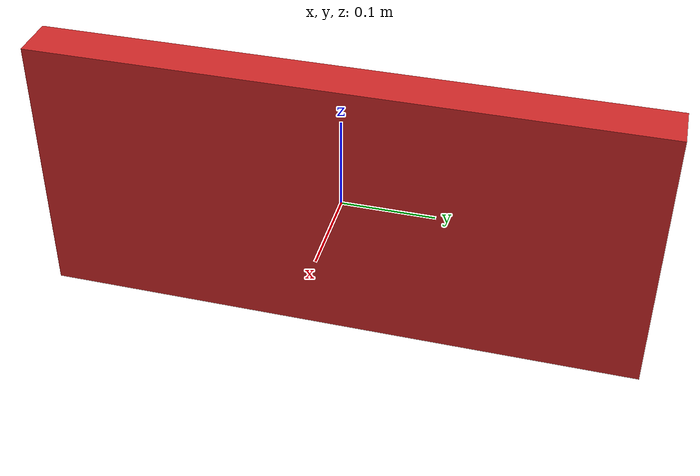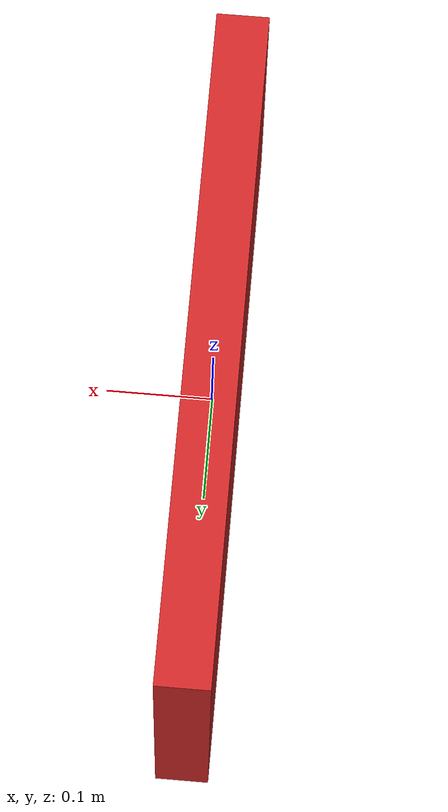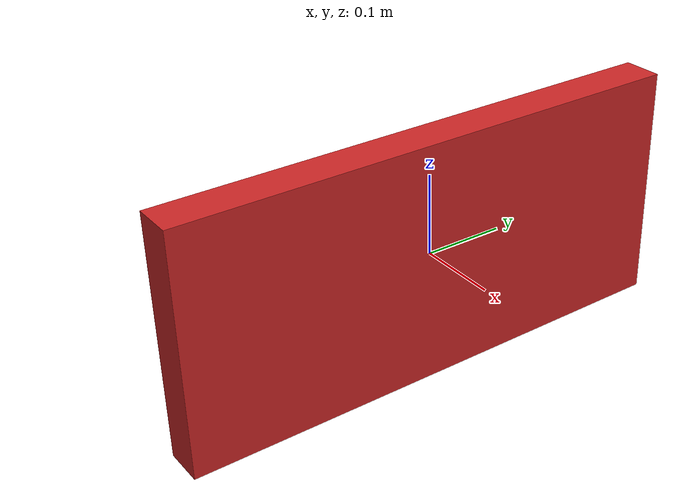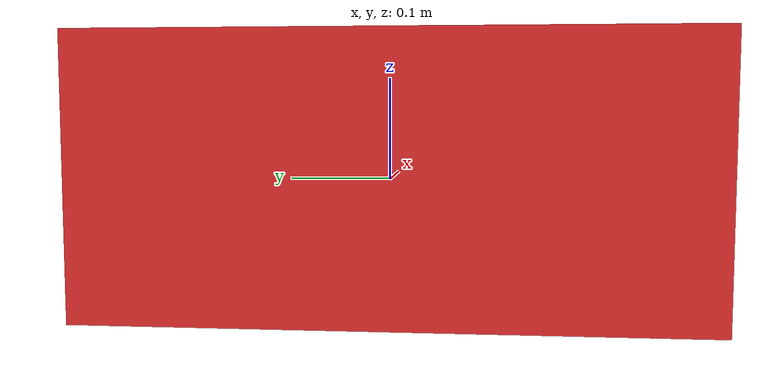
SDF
<?xml version="1.0"?>

<sdf version="1.5">
    <model name="wall_conveyor">
        <static>true</static>
        <link name="link">
            <collision name="collision">
                <geometry>
                    <box>
                        <size>0.05 0.66 0.30</size>
                    </box>
                </geometry>
            </collision>
            <visual name="visual">
                <cast_shadows>true</cast_shadows>
                <geometry>
                    <box>
                        <size>0.05 0.66 0.30</size>
                    </box>
                </geometry>
                <material>
                    <script>
                        <uri>file://media/materials/scripts/gazebo.material</uri>
                        <name>Gazebo/Red</name>
                    </script>
                </material>
            </visual>
        </link>
    </model>
</sdf>
